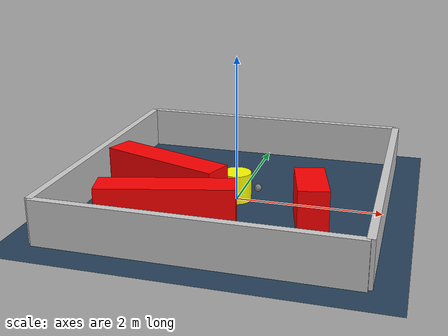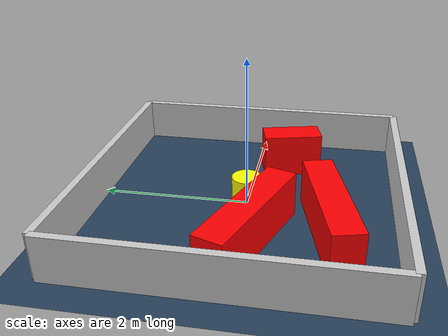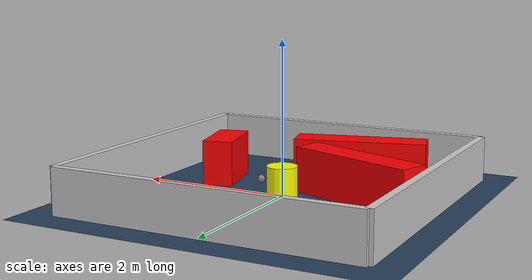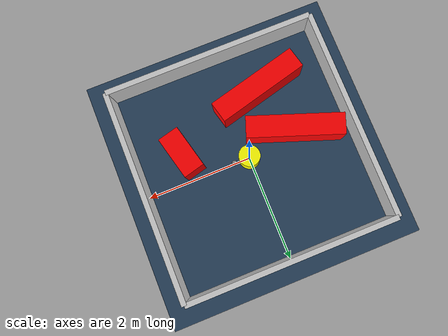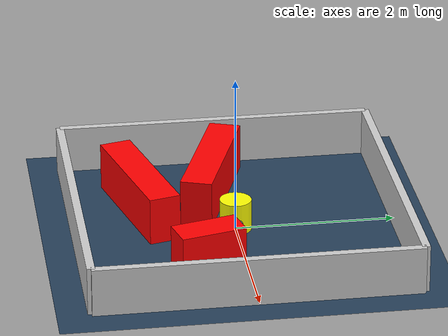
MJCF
<?xml version="1.0" ?>
<mujoco model="generated_environment">
  <option timestep="0.01" integrator="RK4" cone="elliptic"/>
  <default>
    <geom density="1"/>
  </default>
  <asset>
    <texture builtin="gradient" height="3072" rgb1="0.3 0.5 0.7" rgb2="0 0 0" type="skybox" width="512"/>
    <texture builtin="checker" height="300" mark="edge" markrgb="0.8 0.8 0.8" name="groundplane" rgb1="0.2 0.3 0.4" rgb2="0.1 0.2 0.3" type="2d" width="300"/>
    <material name="groundplane" reflectance="0.2" texrepeat="5 5" texture="groundplane" texuniform="true"/>
    <material name="robot" rgba="0.0 1.0 0.0 1"/>
  </asset>
  <worldbody>
    <light dir="0 0 -1" directional="true" pos="0 0 1.5"/>
    <geom condim="4" friction="1.0 0.005 0.001" material="groundplane" name="floor" size="0 0 0.05" type="plane"/>
    <body name="walls">
      <geom name="wall_1" condim="4" pos="-2.0 0.0 0.3" rgba="0.800000011920929 0.800000011920929 0.800000011920929 1.0" size="0.05 2.0 0.3" type="box"/>
      <geom name="wall_2" condim="4" pos="2.0 0.0 0.3" rgba="0.800000011920929 0.800000011920929 0.800000011920929 1.0" size="0.05 2.0 0.3" type="box"/>
      <geom name="wall_3" condim="4" pos="0.0 -2.0 0.3" rgba="0.800000011920929 0.800000011920929 0.800000011920929 1.0" size="2.0 0.05 0.3" type="box"/>
      <geom name="wall_4" condim="4" pos="0.0 2.0 0.3" rgba="0.800000011920929 0.800000011920929 0.800000011920929 1.0" size="2.0 0.05 0.3" type="box"/>
    </body>
    <body name="robot">
      <joint name="joint_x" type="slide" pos="0 0 0" axis="1 0 0"/>
      <joint name="joint_y" type="slide" pos="0 0 0" axis="0 1 0"/>
      <geom name="robot" type="sphere" pos="0.3 0.0 0.2" size="0.05" mass="5." friction="1.0 0.005 0.0001" condim="4" rgba="0.5 0.5 0.5 1.0"/>
      <site name="sensor_ball"/>
    </body>
    <body name="obstacle_movable_1">
      <geom name="obstacle_movable_1" condim="4" pos="0.0 0.0 0.2" euler="0 0 0.0" friction="1.0 0.005 0.001" rgba="1.0 1.0 0.0 1.0" size="0.2 0.2 0.0" type="cylinder" mass="0.1"/>
      <joint type="free"/>
    </body>
    <body name="obstacle_2_static">
      <geom name="obstacle_2_static" condim="4" pos="1.113760538148496 -0.48854175526967736 0.3" euler="0 0 284.0667977915895" friction="1.0 0.005 0.001" rgba="1 0 0 1" size="0.41140415603225466 0.2 0.3" type="box"/>
    </body>
    <body name="obstacle_3_static">
      <geom name="obstacle_3_static" condim="4" pos="-0.6091114577605676 -1.1255840432118225 0.3" euler="0 0 194.28135521298222" friction="1.0 0.005 0.001" rgba="1 0 0 1" size="0.8784710877578219 0.2 0.3" type="box"/>
    </body>
    <body name="obstacle_4_static">
      <geom name="obstacle_4_static" condim="4" pos="-0.9631626910753714 -0.17713809648885914 0.3" euler="0 0 160.3505605533942" friction="1.0 0.005 0.001" rgba="1 0 0 1" size="0.896133474158116 0.2 0.3" type="box"/>
    </body>
  </worldbody>
  <actuator>
    <motor name="actuator_x" joint="joint_x" gear="1" ctrlrange="-1 1"/>
    <motor name="actuator_y" joint="joint_y" gear="1" ctrlrange="-1 1"/>
  </actuator>
</mujoco>
